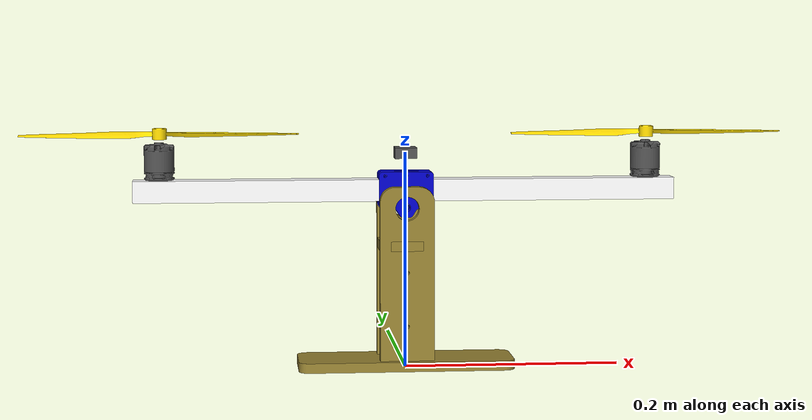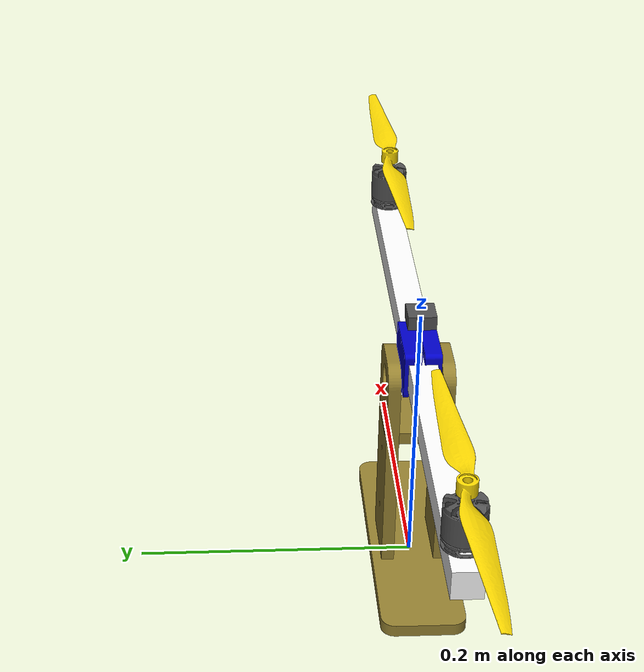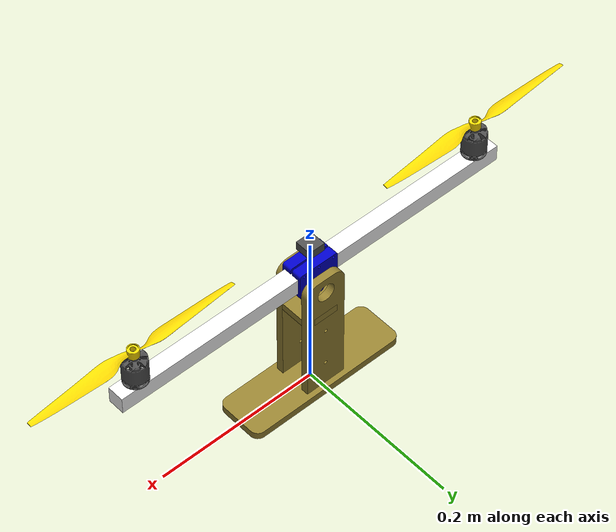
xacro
<?xml version="1.0"?>
<robot name="ciiivtol" xmlns:xacro="http://www.ros.org/wiki/xacro">

    <!-- Import RViz colors -->
    <xacro:include filename="$(find vtol_description)/urdf/material.xacro" />

    <!-- Robot parameters file -->
    <xacro:include filename="$(find vtol_description)/urdf/params.xacro" />

    <!-- Macro for VTOL parts (lateral, motor and propeller -->
    <xacro:include filename="$(find vtol_description)/urdf/lateral.xacro" />
    <xacro:include filename="$(find vtol_description)/urdf/motor.xacro" />
    <xacro:include filename="$(find vtol_description)/urdf/propeller.xacro" />

    <!-- Gazebo elements materials and plugins -->
    <xacro:include filename="$(find vtol_description)/urdf/ciii_vtol.gazebo" />

    <!-- Fixed world link -->
    <link name="world_link" />

    <!-- Base -->
    <link name="base_link">
        <visual>
            <origin xyz="0 0 0" rpy="0 0 0" />
            <geometry>
                <mesh filename="package://vtol_description/meshes/base.stl" />
            </geometry>
            <material name="brown" />
        </visual>
        <collision>
            <origin xyz="0 0 ${B_z / 2}" rpy="0 0 0" />
            <geometry>
                <box size="${B_x} ${B_y} ${B_z}" />
            </geometry>
        </collision>
        <inertial>
            <origin xyz="0 0 0" rpy="0 0 0" />
            <mass value="${B_mass}" />
            <inertia ixx="${B_Ixx}" ixy="0" ixz="0"
                iyy="${B_Iyy}" iyz="0" izz="${B_Izz}" />
        </inertial>
    </link>
    <joint name="world_link" type="fixed">
        <parent link="world_link" />
        <child link="base_link" />
    </joint>

    <!-- Laterals -->
    <xacro:vtol_lateral name="front" origin_xyz="0 -0.019 0.150" />
    <xacro:vtol_lateral name="rear" origin_xyz="0  0.019 0.150" />

    <!-- Crossbar -->
    <link name="crossbar_link">
        <visual>
            <origin xyz="0 0 0" rpy="0 0 0" />
            <geometry>
                <mesh filename="package://vtol_description/meshes/crossbar.stl" />
            </geometry>
            <material name="brown" />
        </visual>
        <collision>
            <origin xyz="0 0 ${C_z / 2}" rpy="0 0 0" />
            <geometry>
                <box size="${C_x} ${C_y} ${C_z}" />
            </geometry>
        </collision>
        <inertial>
            <origin xyz="0 0 0" rpy="0 0 0" />
            <mass value="${C_mass}" />
            <inertia ixx="${C_Ixx}" ixy="0" ixz="0"
                iyy="${C_Iyy}" iyz="0" izz="${C_Izz}" />
        </inertial>
    </link>
    <joint name="crossbar_joint" type="fixed">
        <origin xyz="0 0 0.111" rpy="0 0 0" />
        <parent link="base_link" />
        <child link="crossbar_link" />
    </joint>

    <!-- Axis suppport (front & rear) -->
    <link name="support_link">
        <visual>
            <origin xyz="0 0 0" rpy="0 0 0" />
            <geometry>
                <mesh filename="package://vtol_description/meshes/axis_support.stl" />
            </geometry>
            <material name="blue" />
        </visual>
        <collision>
            <origin xyz="0 0 0.013" rpy="0 0 0" />
            <geometry>
                <box size="0.050 0.026 0.042" />
            </geometry>
        </collision>
        <inertial>
            <origin xyz="0 0 0.016" rpy="0 0 0" />
            <mass value="0.068250" />
            <inertia ixx="0.000013878" ixy="0" ixz="0"
                iyy="0.000024252" iyz="0" izz="0.000018064" />
        </inertial>
        -->
    </link>
    <joint name="support_joint" type="continuous">
        <origin xyz="0 0 0.150" rpy="0 0 0" />
        <parent link="base_link" />
        <child link="support_link" />
        <axis xyz="0 1 0" />
    </joint>

    <!-- Main bar -->
    <link name="bar_link">
        <visual xyz="0 0 0" rpy="0 0 0">
            <origin xyz="0 0 0.016" rpy="0 0 0" />
            <geometry>
                <box size="${MB_L} ${MB_w_out} ${MB_w_out}" rpy="0 0 0"/>
            </geometry>
            <material name="white" />
        </visual>
        <collision>
            <origin xyz="0 0 0.016" rpy="0 0 0" />
            <geometry>
                <box size="${MB_L} ${MB_w_out} ${MB_w_out}" rpy="0 0 0"/>
            </geometry>
        </collision>
        <inertial>
            <origin xyz="0 0 0" rpy="0 0 0" />
            <mass value="${MB_mass}" />
            <inertia ixx="${MB_Ixx}" ixy="0" ixz="0" iyy="${MB_Iyy}" iyz="0" izz="${MB_Iyy}" />
        </inertial>
    </link>
    <joint name="bar_joint" type="fixed">
        <parent link="support_link" />
        <child link="bar_link" />
    </joint>

    <!-- Left & Right motors -->
    <xacro:motor name="lmotor" origin_xyz="-0.225 0 0.0435" />
    <xacro:motor name="rmotor" origin_xyz="0.225 0 0.0435" />

    <!-- Left & Right propellers -->
    <xacro:propeller name="lprop" parent="lmotor" />
    <xacro:propeller name="rprop" parent="rmotor" />

    <!-- IMU sensor -->
    <link name="imu_link">
        <visual xyz="0 0 0" rpy="0 0 0">
            <origin xyz="0 0 0" rpy="0 0 0" />
            <geometry>
                <box size="0.02 0.02 0.01" />
            </geometry>
            <material name="gray" />
        </visual>
        <collision>
            <origin xyz="0 0 0" rpy="0 0 0" />
            <geometry>
                <box size="0.02 0.02 0.01" />
            </geometry>
        </collision>
        <inertial>
            <origin xyz="0 0 0" rpy="0 0 0" />
            <mass value="0.001" />
            <inertia ixx="0.000001" ixy="0" ixz="0" iyy="0.000001" iyz="0" izz="0.000001"/>
        </inertial>
    </link>
    <joint name="imu_joint" type="fixed">
        <origin xyz="0 0 0.05" />
        <parent link="bar_link" />
        <child link="imu_link" />
    </joint>

</robot>

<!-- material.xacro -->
<robot xmlns:xacro="http://www.ros.org/wiki/xacro">

    <!-- RViz materials -->
    <material name="brown" >
        <color rgba="${150/255} ${130/255} ${50/255} 1" />
    </material>
    <material name="blue">
        <color rgba="0 0 ${200/255} 1" />
    </material>
    <material name="white" >
        <color rgba="1 1 1 1" />
    </material>
    <material name="gray">
        <color rgba="${80/255} ${80/255} ${80/255} 1" />
    </material>
    <material name="yellow">
        <color rgba="${255/255} ${220/255} ${0/255} 1" />
    </material>

</robot>

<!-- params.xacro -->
<robot xmlns:xacro="http://www.ros.org/wiki/xacro">

    <!-- Density so that the base weights more that 10 Kg -->
    <xacro:property name="rho_B" value="100.0" />

    <!-- Density of MDF: 600-800 Kg/m^3 -->
    <xacro:property name="rho_mdf" value="0.7" />

    <!-- Base -->
    <xacro:property name="B_x" value="0.200" />
    <xacro:property name="B_y" value="0.060" />
    <xacro:property name="B_z" value="0.009" />
    <xacro:property name="B_vol" value="${B_x * B_y * B_z}" />
    <xacro:property name="B_mass" value="${1000.0 * B_vol * rho_B}" />
    <xacro:property name="B_Ixx" value="${(1/12) * B_mass * (B_y**2 + B_z**2)}" />
    <xacro:property name="B_Iyy" value="${(1/12) * B_mass * (B_x**2 + B_z**2)}" />
    <xacro:property name="B_Izz" value="${(1/12) * B_mass * (B_x**2 + B_y**2)}" />

    <!-- Laterals -->
    <xacro:property name="L_x" value="0.050" />
    <xacro:property name="L_y" value="0.009" />
    <xacro:property name="L_z" value="0.170" />
    <xacro:property name="L_vol" value="${L_x * L_y * L_z}" />
    <xacro:property name="L_mass" value="${1000.0 * L_vol * rho_mdf}" />
    <xacro:property name="L_Ixx" value="${(1/12) * L_mass * (L_y**2 + L_z**2)}" />
    <xacro:property name="L_Iyy" value="${(1/12) * L_mass * (L_x**2 + L_z**2)}" />
    <xacro:property name="L_Izz" value="${(1/12) * L_mass * (L_x**2 + L_y**2)}" />

    <!-- Crossbar -->
    <xacro:property name="C_x" value="0.050" />
    <xacro:property name="C_y" value="0.047" />
    <xacro:property name="C_z" value="0.009" />
    <xacro:property name="C_vol" value="${C_x * C_y * C_z}" />
    <xacro:property name="C_mass" value="${1000.0 * C_vol * rho_mdf}" />
    <xacro:property name="C_Ixx" value="${(1/12) * C_mass * (C_y**2 + C_z**2)}" />
    <xacro:property name="C_Iyy" value="${(1/12) * C_mass * (C_x**2 + C_z**2)}" />
    <xacro:property name="C_Izz" value="${(1/12) * C_mass * (C_x**2 + C_y**2)}" />

    <!-- Main bar -->
    <xacro:property name="MB_rho" value="2.7" />
    <xacro:property name="MB_w_out" value="0.020" />
    <xacro:property name="MB_thickness" value="0.0016" />
    <xacro:property name="MB_w_in" value="${MB_w_out - 2*MB_thickness}" />
    <xacro:property name="MB_L" value="0.500" />
    <xacro:property name="MB_vol" value="${(MB_w_out**2 - MB_w_in**2) * MB_L}" />
    <xacro:property name="MB_mass" value="${1000.0 * MB_vol * MB_rho}" />
    <xacro:property name="MB_Ixx" value="${(1/12) * MB_mass * 2 * MB_w_out**2}" />
    <xacro:property name="MB_Iyy" value="${(1/12) * MB_mass * (MB_w_out**2 + MB_L**2)}" />

</robot>

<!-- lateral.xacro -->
<robot xmlns:xacro="http://www.ros.org/wiki/xacro">

    <xacro:include filename="$(find vtol_description)/urdf/params.xacro" />

    <!-- Macro for CIII-1D-VTOL laterals -->
    <xacro:macro name="vtol_lateral" params="name origin_xyz">
        <link name="${name}_link">
            <visual>
                <origin xyz="0 0 0" rpy="0 0 0" />
                <geometry>
                    <mesh filename="package://vtol_description/meshes/lateral.stl" />
                </geometry>
                <material name="brown" />
            </visual>
            <collision>
                <origin xyz="0 0 ${(-L_z / 2) + 0.020}" rpy="0 0 0" />
                <geometry>
                    <box size="${L_x} ${L_y} ${L_z}" />
                </geometry>
            </collision>
            <inertial>
                <origin xyz="0 0 0" rpy="0 0 0" />
                <mass value="${L_mass}" />
                <inertia ixx="${L_Ixx}" ixy="0" ixz="0"
                    iyy="${L_Iyy}" iyz="0" izz="${L_Izz}" />
            </inertial>
        </link>
        <joint name="${name}_joint" type="fixed">
            <origin xyz="${origin_xyz}" rpy="0 0 0" />
            <parent link="base_link" />
            <child link="${name}_link" />
        </joint>
    </xacro:macro>

</robot>

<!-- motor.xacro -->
<robot xmlns:xacro="http://www.ros.org/wiki/xacro">

    <xacro:property name="motor_r" value="0.01325" />
    <xacro:property name="motor_h" value="0.034" />
    <xacro:property name="motor_mass" value="0.200" />

    <!-- Macro for VTOL motor -->
    <xacro:macro name="motor" params="name origin_xyz">
        <link name="${name}_link">
            <visual>
                <origin xyz="0 0 -0.0065" rpy="0 0 0" />
                <geometry>
                    <mesh filename="package://vtol_description/meshes/tiger_mt2216.stl" />
                </geometry>
                <material name="gray" />
            </visual>
            <collision>
                <geometry>
                    <cylinder radius="${motor_r}" length="${motor_h}" />
                </geometry>
            </collision>
            <inertial>
                <origin xyz="0 0 0" rpy="0 0 0" />
                <mass value="${motor_mass}" />
                <inertia ixx="${(1/12) * motor_mass * motor_h**2}" ixy="0" ixz="0"
                    iyy="${(1/12) * motor_mass * motor_h**2}" iyz="0" izz="${(1/2) * motor_mass * motor_r**2}" />
            </inertial>
        </link>
        <joint name="${name}_joint" type="fixed">
            <origin xyz="${origin_xyz}" rpy="0 0 0" />
            <parent link="bar_link" />
            <child link="${name}_link" />
        </joint>
    </xacro:macro>

</robot>

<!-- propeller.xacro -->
<robot xmlns:xacro="http://www.ros.org/wiki/xacro">

    <xacro:property name="prop_r" value="0.127" />
    <xacro:property name="prop_h" value="0.010" />
    <xacro:property name="prop_offset" value="0.025" />

    <!-- Macro for VTOL propeller -->
    <xacro:macro name="propeller" params="name parent">
        <link name="${name}_link">
            <visual>
                <origin xyz="0 0 ${prop_offset}" rpy="0 0 0" />
                <geometry>
                    <mesh filename="package://vtol_description/meshes/propeller_10inch.stl" />
                </geometry>
                <material name="yellow" />
            </visual>
            <collision>
                <origin xyz="0 0 ${prop_offset}" rpy="0 0 0" />
                <geometry>
                    <cylinder radius="${prop_r}" length="${prop_h}" />
                </geometry>
            </collision>
            <inertial>
                <origin xyz="0 0 0" rpy="0 0 0" />
                <mass value="0.100" />
                <inertia ixx="0.0001" ixy="0" ixz="0"
                    iyy="0.0001" iyz="0" izz="0.001" />
            </inertial>
        </link>
        <joint name="${name}_joint" type="continuous">
            <origin xyz="0 0 0" rpy="0 0 0" />
            <parent link="${parent}_link" />
            <child link="${name}_link" />
            <axis xyz="0 0 1" />
        </joint>
    </xacro:macro>

</robot>
